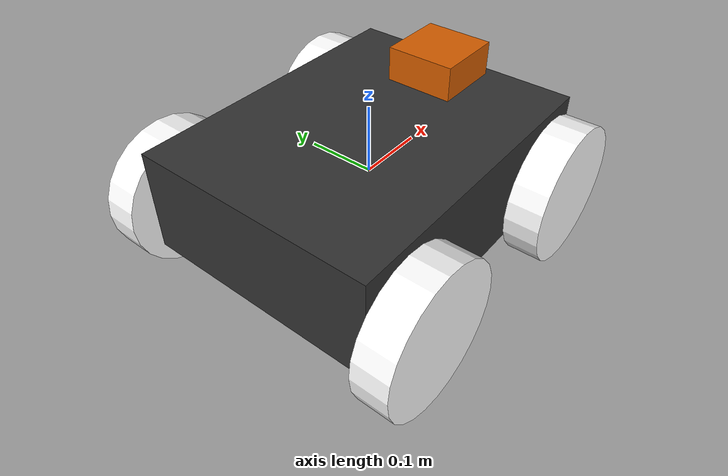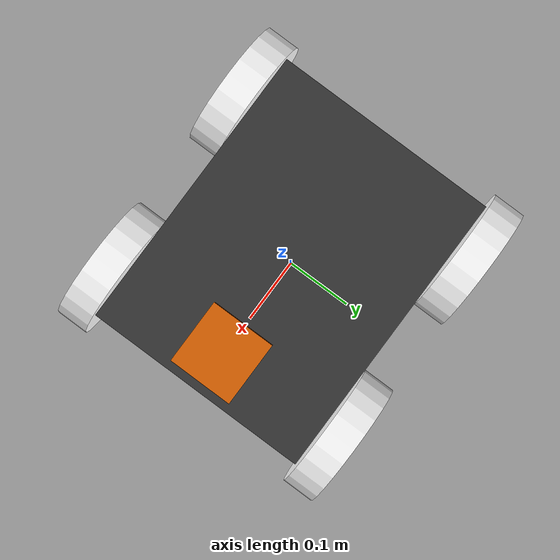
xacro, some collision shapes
<?xml version="1.0" ?>
  <robot name="ugv">

	<!-- *******Chassis*******/-->

  <link name="base_link">
    <visual>
      <geometry>
          <box size=".45 0.35 0.15"/>
      </geometry>
      <material name="gray">
        <color rgba=".2 .2 .2 1" />
      </material>
    </visual>
  <inertial>
            <mass value="20" />
            <inertia ixx="0.04" ixy="0.0" ixz="0"
            iyy="0.17" iyz="0" izz="0.25" />
    </inertial>

    <collision>
      <geometry>
          <box size=".45 0.35 0.15"/>
      </geometry>
    </collision>
  </link>

	<!-- *******WHEELS*******/-->
	<!-- *******RIGHT WHEELS*******/-->

<!-- *******RIGHT-FRONT WHEEL LINK*******/-->
  <link name="front_right_wheel">
    <inertial>
            <mass value="1" />
            <inertia ixx="1e-3" ixy="0.0" ixz="0"
            iyy="1e-3" iyz="0" izz="1e-3" />
    </inertial>

    <visual>

      <geometry>
          <cylinder radius="0.1" length="0.05"/>
      </geometry>
      <material name="white">
        <color rgba="1 1 1 1"/>
      </material>
    </visual>

    <collision>

      <geometry>
          <cylinder radius="0.1" length="0.05"/>
      </geometry>
      <contact_coefficients mu="1" kp="1e+13" kd="1.0"/>
    </collision>
  </link>

<!-- *******RIGHT-FRONT WHEEL JOINT*******/-->

  <joint name="front_right_wheel_joint" type="continuous">
    <origin xyz="0.16 -0.205 -0.03" rpy="1.57 0.0 0.0"/>
    <parent link="base_link"/>
    <child link="front_right_wheel"/>
    <axis xyz="0.0 0.0 1.0"/>
  </joint>

<!-- *******RIGHT-BACK WHEEL LINK*******/-->

<link name="back_right_wheel">
    <inertial>
            <mass value="1" />
            <inertia ixx="1e-3" ixy="0.0" ixz="0"
            iyy="1e-3" iyz="0" izz="1e-3" />
    </inertial>

    <visual>

      <geometry>
          <cylinder radius="0.1" length="0.05"/>
      </geometry>
      <material name="white">
        <color rgba="1 1 1 1"/>
      </material>
    </visual>

    <collision>
      <geometry>
          <cylinder radius="0.1" length="0.05"/>
      </geometry>
      <contact_coefficients mu="1" kp="1e+13" kd="1.0"/>
    </collision>
  </link>

<!-- *******RIGHT-BACK WHEEL JOINT*******/-->

  <joint name="back_right_wheel_joint" type="continuous">
    <origin xyz="-0.16 -0.205 -0.03" rpy="1.57 0.0 0.0"/>
    <parent link="base_link"/>
    <child link="back_right_wheel"/>
    <axis xyz="0.0 0.0 1.0"/>

  </joint>

<!-- *******LEFT-FRONT WHEEL LINK*******/-->

  <link name="front_left_wheel">
    <inertial>
            <mass value="1" />
            <inertia ixx="1e-3" ixy="0.0" ixz="0"
            iyy="1e-3" iyz="0" izz="1e-3" />
    </inertial>

    <visual>

      <geometry>
          <cylinder radius="0.1" length="0.05"/>
      </geometry>
      <material name="white">
        <color rgba="1 1 1 1"/>
      </material>
    </visual>

    <collision>
      <geometry>
          <cylinder radius="0.1" length="0.05"/>
      </geometry>
      <contact_coefficients mu="1" kp="1e+13" kd="1.0"/>
    </collision>
  </link>

<!-- *******LEFT-FRONT WHEEL JOINT*******/-->

  <joint name="front_left_wheel_joint" type="continuous">
    <origin xyz="0.16 0.205 -0.03" rpy="1.57 0.0 0.0"/>
    <parent link="base_link"/>
    <child link="front_left_wheel"/>
    <axis xyz="0.0 0.0 1.0"/>

  </joint>

<!-- *******LEFT-BACK WHEEL LINK*******/-->

  <link name="back_left_wheel">
    <inertial>
            <mass value="1" />
            <inertia ixx="1e-3" ixy="0.0" ixz="0"
            iyy="1e-3" iyz="0" izz="1e-3" />
    </inertial>

    <visual>

      <geometry>
          <cylinder radius="0.1" length="0.05"/>
      </geometry>
      <material name="white">
        <color rgba="1 1 1 1"/>
      </material>
    </visual>

    <collision>
      <geometry>
          <cylinder radius="0.1" length="0.05"/>
      </geometry>
      <contact_coefficients mu="1" kp="1e+13" kd="1.0"/>
    </collision>
  </link>

<!-- *******LEFT-BACK WHEEL JOINT*******/-->

  <joint name="back_left_wheel_joint" type="continuous">
    <origin xyz="-0.16 0.205 -0.03" rpy="1.57 0.0 0.0"/>
    <parent link="base_link"/>
    <child link="back_left_wheel"/>
    <axis xyz="0.0 0.0 1.0"/>

  </joint>

<!-- ++++++++++++++++++  Kinect  +++++++++++++++++++++++++++++ /-->
<!--kinect joint /-->

<joint name="kinect_joint" type="fixed">

    <origin xyz=".16 0 .075" rpy="0 0 0"/>

    <parent link="base_link"/>
    <child link="camera_link"/>

</joint>

<!--Kinect  Link /-->

<link name="camera_link">

 <visual>

      <origin xyz="0 0 0.05" rpy="0 0 0"/>

      <geometry>

      <mesh filename="package://expobot_description/meshes/kinect.dae"/>

      </geometry>

 </visual>

 <collision>
    <origin xyz="0 0 0" rpy="0 0 0"/>

    <geometry>
    <box size="0.1 0.1 0.1"/>
    </geometry>

 </collision>

 <inertial>
     <mass value="1e-5" />
     <origin xyz="0 0 0" rpy="0 0 0"/>
     <inertia ixx="1e-6" ixy="0" ixz="0" iyy="1e-6" iyz="0" izz="1e-6" />
 </inertial>

</link>

<!--  Kinect Optical Link and joints   /-->

<joint name="kinect_optical_joint" type="fixed">

<origin xyz="0 0 0" rpy="-1.5707 0 -1.5707"/> <!-- To invert the coordinates from image convention (Z is forward) to normal xyz /-->
<parent link="camera_link"/>
<child link="kinect_optical"/>
</joint>

<!--Virtual link to project the images to, and then flip it to us as its joint is flipped  /-->
<link name="kinect_optical">
</link>

<!-- *******GAZEBO*******/-->

    <gazebo>
        <plugin name="skid_steer_drive_controller" filename="libgazebo_ros_skid_steer_drive.so">
          <updateRate>10.0</updateRate>
          <robotNamespace>/</robotNamespace>
          <leftFrontJoint>front_left_wheel_joint</leftFrontJoint>
          <rightFrontJoint>front_right_wheel_joint</rightFrontJoint>
          <leftRearJoint>back_left_wheel_joint</leftRearJoint>
          <rightRearJoint>back_right_wheel_joint</rightRearJoint>
          <wheelSeparation>0.8</wheelSeparation>
          <wheelDiameter>0.3</wheelDiameter>
          <robotBaseFrame>base_link</robotBaseFrame>
          <torque>27</torque>
          <topicName>cmd_vel</topicName>
          <commandTopic>cmd_vel</commandTopic>

          <odometryTopic>odom</odometryTopic>
          <odometryFrame>odom</odometryFrame>
          <odometrySource>world</odometrySource>
          <publishTf>1</publishTf>
          <publishOdomTF>true</publishOdomTF>

          <broadcastTF>true</broadcastTF>
        </plugin>
      </gazebo>

      <gazebo>
        <plugin name="joint_state_publisher"
                filename="libgazebo_ros_joint_state_publisher.so">
            <jointName>front_left_wheel_joint, front_right_wheel_joint,back_left_wheel_joint,back_right_wheel_joint</jointName>
        </plugin>

	<node name="joint_state_publisher" pkg="joint_state_publisher" type="joint_state_publisher">
    <param name="use_gui" value="false"/>
  </node>

  <!-- Combine joint values -->
  <node name="robot_state_publisher" pkg="robot_state_publisher" type="robot_state_publisher"/>

    </gazebo>

    <!--  ++++++++++++++++++Kinect Plugin+++++++++++++++++++          /-->

<gazebo reference="camera_link">
   <sensor type="depth" name="camera">

       <always_on>1</always_on>
       <visualize>true</visualize>

       <camera>
            <horizontal_fov>1.047</horizontal_fov>
            <image>
                <width>640</width>
                <height>480</height>
                <format>R8G8B8</format>
            </image>

            <clip>
                <near>0.1</near>
                <far>100</far>
            </clip>

       </camera>

       <plugin name="camera_controller" filename="libgazebo_ros_openni_kinect.so">
             <alwaysOn>true</alwaysOn>
             <updateRate>10.0</updateRate>
             <cameraName>camera</cameraName>
             <frameName>kinect_optical</frameName>
             <imageTopicName>rgb/image_raw</imageTopicName>
             <depthImageTopicName>depth/image_raw</depthImageTopicName>
             <pointCloudTopicName>depth/points</pointCloudTopicName>
             <cameraInfoTopicName>rgb/camera_info</cameraInfoTopicName>
             <depthImageCameraInfoTopicName>depth/camera_info</depthImageCameraInfoTopicName>
             <pointCloudCutoff>0.4</pointCloudCutoff>
             <hackBaseline>0.07</hackBaseline>
             <distortionK1>0.0</distortionK1>
             <distortionK2>0.0</distortionK2>
             <distortionK3>0.0</distortionK3>
             <distortionT1>0.0</distortionT1>
             <distortionT2>0.0</distortionT2>
             <CxPrime>0.0</CxPrime>
             <Cx>0.0</Cx>
             <Cy>0.0</Cy>
             <focalLength>0.0</focalLength>
       </plugin>

    </sensor>
  </gazebo >

    </robot>
